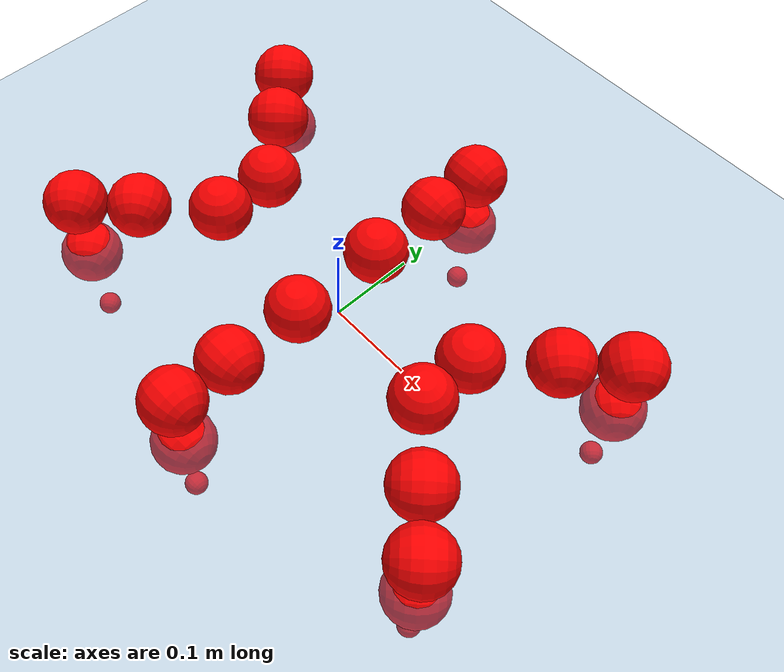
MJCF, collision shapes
<mujoco model="Golem">
  <compiler angle="radian" assetdir="assets" balanceinertia="true" inertiafromgeom="false"/>

  <option timestep="0.005" density="1.2" viscosity="2e-05"/>

  <size nkey="1"/>

  <visual>
    <quality shadowsize="8192"/>
    <map shadowclip="0.5"/>
  </visual>

  <default>
    <default class="/">
      <joint armature="0.01" damping="0.01" frictionloss="0.01"/>
      <geom contype="0" conaffinity="0" group="1" solref="-1000 -80"/>
      <site size="0.01 0.005 0.005" group="5"/>
      <general forcelimited="true" biastype="affine" gainprm="25" biasprm="0 -25 -0.5"/>
      <default class="visual">
        <geom type="mesh" group="2"/>
      </default>
      <default class="collision">
        <geom group="3"/>
      </default>
      <default class="foot">
        <geom size="0.01 0 0" condim="6" group="4" priority="1" solimp="0.015 1 0.01"/>
      </default>
      <default class="reward_collision_sphere">
        <geom group="5" rgba="1 0 0 1"/>
      </default>
    </default>
  </default>

  <asset>
    <texture type="skybox" colorspace="auto" name="//unnamed_texture_0" builtin="gradient" rgb1="0.95 0.95 0.95" rgb2="0.95 0.95 0.95" width="100" height="600"/>
    <texture type="2d" colorspace="auto" name="texplane" builtin="checker" rgb1="0.345 0.575 0.748" rgb2="0.345 0.575 0.748" markrgb="1 1 1" width="512" height="512"/>
    <material name="MatPlane" class="/" texture="texplane" texuniform="true" texrepeat="2 2" specular="0.9"/>
    <mesh name="body" class="/" file="body.stl" scale="0.001 0.001 0.001"/>
    <mesh name="coxa" class="/" file="coxa.stl" scale="0.001 0.001 0.001"/>
    <mesh name="femur" class="/" file="femur.stl" scale="0.001 0.001 0.001"/>
    <mesh name="tibia" class="/" file="tibia.stl" scale="0.001 0.001 0.001"/>
    <mesh name="tarsus" class="/" file="tarsus.stl" scale="0.001 0.001 0.001"/>
  </asset>

  <worldbody>
    <geom name="floor" class="/" size="100 100 0.125" type="plane" group="0" material="MatPlane"/>
    <light name="toplight_shadow" class="/" pos="0 0 5" dir="0.0990148 0.0990148 -0.990148" type="directional" ambient="0.04 0.04 0.04" diffuse="0.55 0.55 0.55" specular="0.12 0.12 0.12"/>
    <light name="toplight_fill" class="/" pos="0 0 5" dir="0.0990148 0.0990148 -0.990148" type="directional" castshadow="false" ambient="0.04 0.04 0.04" diffuse="0.3 0.3 0.3" specular="0.08 0.08 0.08"/>
    <body name="trunk" pos="0.000668765 0.000159993 -0.000304506" quat="1 -0.000179591 -6.34418e-05 -0.00010378">
      <inertial pos="-0.000344974 0.000593005 -0.00335641" quat="0.999991 0.00207575 0.00313169 0.00218742" mass="2.63374" diaginertia="0.0108258 0.00117763 0.0100077"/>
      <joint name="//unnamed_joint_0" type="free"/>
      <geom name="//unnamed_geom_1" class="/" pos="0 0 0.0639381" quat="1 0 0 0" type="mesh" rgba="0.9 0.9 0.9 1" mesh="body"/>
      <site name="imu" class="/" pos="0.131269 -0.00127897 0.103878" size="0.00888491"/>
      <camera name="track" class="/" pos="0 -1.30208 0" quat="0.707107 0.707107 0 0" mode="trackcom"/>
      <camera name="ego_camera" class="/" pos="0.132002 0 0.0999033" quat="-0.5 -0.5 0.5 0.5"/>
      <body name="coxa_RR" pos="-0.179298 -0.0547995 0.0640997" quat="0.382725 2.31788e-05 7.71818e-05 -0.923862">
        <inertial pos="-0.00105864 -0.000535406 -0.000224854" quat="0.999989 -0.00134923 0.00428743 -0.00109303" mass="0.141733" diaginertia="0.0108228 0.00116866 0.00996279"/>
        <joint name="coxa_joint_RR" class="/" pos="0 0 0" axis="0.000491709 0.00184463 -0.999998" range="-3.13567 3.12041" armature="0.00922668" damping="0.00533454" frictionloss="0.00894425"/>
        <geom name="//unnamed_geom_2" class="/" type="mesh" rgba="0.2 0.2 0.2 1" mesh="coxa"/>
        <geom name="//unnamed_geom_3" class="reward_collision_sphere" size="0.0355397" pos="-0.0304621 0 0"/>
        <body name="femur_RR" pos="0.0597831 0.000487872 -3.33034e-05" quat="0.499901 -0.499856 0.500235 0.500009">
          <inertial pos="0.000171888 -0.000520101 -0.000177843" quat="1 -0.000169326 -8.9382e-05 0.0002694" mass="0.139066" diaginertia="0.0107176 0.00115982 0.00991192"/>
          <joint name="femur_joint_RR" class="/" pos="0 0 0" axis="-0.00108227 -0.00181378 -0.999998" range="-3.15738 3.15621" armature="0.00886744" damping="0" frictionloss="0.00864762"/>
          <geom name="//unnamed_geom_4" class="/" type="mesh" rgba="0.9 0.9 0.9 1" mesh="femur"/>
          <geom name="//unnamed_geom_5" class="reward_collision_sphere" size="0.0355397"/>
          <body name="tibia_RR" pos="-0.000112705 -0.0707666 -0.000473797" quat="0.0001817 1 -5.79795e-05 0.00027774">
            <inertial pos="0.000738681 0.000174527 -0.00034855" quat="0.999996 0.00234956 0.00169422 -0.000237902" mass="0.142214" diaginertia="0.010754 0.00117552 0.00990871"/>
            <joint name="tibia_joint_RR" class="/" pos="0 0 0" axis="-0.000142528 0.000780275 1" range="-3.1307 3.1377" armature="0.00893161" damping="0.001521" frictionloss="0.00891123"/>
            <geom name="//unnamed_geom_6" class="/" type="mesh" rgba="0.2 0.2 0.2 1" mesh="tibia"/>
            <geom name="//unnamed_geom_7" class="reward_collision_sphere" size="0.0355397"/>
            <body name="tarsus_RR" pos="0.089113 0.000167928 -0.00101318" quat="1 -0.000321051 0.000353026 -8.21606e-06">
              <inertial pos="0.0623711 0.000721089 0.000238392" quat="0.500544 0.499798 0.500248 0.499409" mass="0.140697" diaginertia="0.0107672 0.00117773 0.00995012"/>
              <joint name="tarsus_joint_RR" class="/" pos="0 0 0" axis="0.00357854 -0.00432168 0.999984" range="-3.14072 3.13784" armature="0.00898581" damping="0.0430499" frictionloss="0.00908077"/>
              <geom name="//unnamed_geom_8" class="/" type="mesh" rgba="0.9 0.9 0.9 1" mesh="tarsus"/>
              <geom name="foot_1" class="foot" size="0.00856765" pos="0.113725 0 0" quat="0 -0.707107 0 0.707107"/>
              <geom name="//unnamed_geom_10" class="reward_collision_sphere" size="0.0355397"/>
              <geom name="//unnamed_geom_11" class="reward_collision_sphere" size="0.0133274" pos="0.109156 0 0"/>
              <site name="foot_1" class="foot" pos="0.113725 0 0" quat="0 -0.707107 0 0.707107" size="0.00888491"/>
            </body>
          </body>
        </body>
      </body>
      <body name="coxa_RM" pos="-0.000435207 -0.086679 0.0639171" quat="0.707126 -4.05586e-05 1.63041e-05 -0.707087">
        <inertial pos="0.000195809 -5.54918e-05 -0.000205324" quat="1 -0.000138833 0.000163325 -1.42e-05" mass="0.140424" diaginertia="0.0109231 0.00116157 0.00996615"/>
        <joint name="coxa_joint_RM" class="/" pos="0 0 0" axis="0.000181864 -8.57437e-05 -1" range="-3.1486 3.13971" armature="0.00858619" damping="0.00901659" frictionloss="0.00883234"/>
        <geom name="//unnamed_geom_12" class="/" type="mesh" rgba="0.2 0.2 0.2 1" mesh="coxa"/>
        <geom name="//unnamed_geom_13" class="reward_collision_sphere" size="0.0355397" pos="-0.0304621 0 0"/>
        <body name="femur_RM" pos="0.059697 0.000122378 -0.00010736" quat="0.500013 -0.499991 0.500342 0.499654">
          <inertial pos="7.15578e-05 0.000681587 -0.00028407" quat="0.999994 0.000643742 -0.00132037 -0.00297369" mass="0.137455" diaginertia="0.0107661 0.0011524 0.00978613"/>
          <joint name="femur_joint_RM" class="/" pos="0 0 0" axis="0.000143593 0.000100742 -1" range="-3.15524 3.13395" armature="0.0088088" damping="0.00961338" frictionloss="0.00886621"/>
          <geom name="//unnamed_geom_14" class="/" type="mesh" rgba="0.9 0.9 0.9 1" mesh="femur"/>
          <geom name="//unnamed_geom_15" class="reward_collision_sphere" size="0.0355397"/>
          <body name="tibia_RM" pos="0.000225002 -0.0692462 -0.000299902" quat="0.000157249 1 -0.00011833 0.000321603">
            <inertial pos="0.000729739 0.000551049 -0.00037429" quat="0.999996 0.00192908 -6.21965e-05 0.00204822" mass="0.140935" diaginertia="0.0108211 0.0011688 0.00985447"/>
            <joint name="tibia_joint_RM" class="/" pos="0 0 0" axis="0.00225973 -0.00278017 0.999994" range="-3.13758 3.1376" armature="0.00873738" damping="0.00626249" frictionloss="0.00875624"/>
            <geom name="//unnamed_geom_16" class="/" type="mesh" rgba="0.2 0.2 0.2 1" mesh="tibia"/>
            <geom name="//unnamed_geom_17" class="reward_collision_sphere" size="0.0355397"/>
            <body name="tarsus_RM" pos="0.0897692 -0.000130728 0.00118136" quat="1 -6.60797e-06 3.09578e-05 1.56424e-05">
              <inertial pos="0.060873 -0.000336375 0.000342863" quat="0.499866 0.499946 0.499443 0.500744" mass="0.141105" diaginertia="0.0107102 0.00117676 0.00980613"/>
              <joint name="tarsus_joint_RM" class="/" pos="0 0 0" axis="0.00038374 0.000619179 1" range="-3.12452 3.15503" armature="0.00926693" damping="0.00456287" frictionloss="0.00851886"/>
              <geom name="//unnamed_geom_18" class="/" type="mesh" rgba="0.9 0.9 0.9 1" mesh="tarsus"/>
              <geom name="foot_2" class="foot" size="0.00895232" pos="0.113725 0 0" quat="0 -0.707107 0 0.707107"/>
              <geom name="//unnamed_geom_20" class="reward_collision_sphere" size="0.0355397"/>
              <geom name="//unnamed_geom_21" class="reward_collision_sphere" size="0.0133274" pos="0.109156 0 0"/>
              <site name="foot_2" class="foot" pos="0.113725 0 0" quat="0 -0.707107 0 0.707107" size="0.00888491"/>
            </body>
          </body>
        </body>
      </body>
      <body name="coxa_RF" pos="0.180799 -0.0548521 0.0633778" quat="0.923867 -2.6454e-05 5.24189e-05 -0.382713">
        <inertial pos="0.000495006 0.000237206 0.000230867" quat="1 0.000270413 0.000554196 -0.000462962" mass="0.140778" diaginertia="0.0107175 0.00118009 0.00994558"/>
        <joint name="coxa_joint_RF" class="/" pos="0 0 0" axis="0.000445139 -0.000561079 -1" range="-3.1546 3.13118" armature="0.00905798" damping="0.00131421" frictionloss="0.00897871"/>
        <geom name="//unnamed_geom_22" class="/" type="mesh" rgba="0.2 0.2 0.2 1" mesh="coxa"/>
        <geom name="//unnamed_geom_23" class="reward_collision_sphere" size="0.0355397" pos="-0.0304621 0 0"/>
        <body name="femur_RF" pos="0.0594948 0.00024924 -0.000532445" quat="0.500008 -0.499999 0.49994 0.500054">
          <inertial pos="0.000246079 0.000647868 0.000716881" quat="1 -1.60476e-06 0.000789589 0.000484105" mass="0.137798" diaginertia="0.0107151 0.00116067 0.00983938"/>
          <joint name="femur_joint_RF" class="/" pos="0 0 0" axis="0.000570904 0.00417933 -0.999991" range="-3.13744 3.15578" armature="0.00926405" damping="0.00946705" frictionloss="0.00863395"/>
          <geom name="//unnamed_geom_24" class="/" type="mesh" rgba="0.9 0.9 0.9 1" mesh="femur"/>
          <geom name="//unnamed_geom_25" class="reward_collision_sphere" size="0.0355397"/>
          <body name="tibia_RF" pos="0.00081509 -0.0712534 0.000363455" quat="0.000438718 1 0.000101141 -0.000188898">
            <inertial pos="0.00040609 0.000434535 -0.000279792" quat="0.999997 -0.000244198 0.00121469 0.00203041" mass="0.140265" diaginertia="0.010917 0.00117831 0.0101261"/>
            <joint name="tibia_joint_RF" class="/" pos="0 0 0" axis="5.72249e-05 -0.000175326 1" range="-3.13654 3.1437" armature="0.00893444" damping="0.0122011" frictionloss="0.00879201"/>
            <geom name="//unnamed_geom_26" class="/" type="mesh" rgba="0.2 0.2 0.2 1" mesh="tibia"/>
            <geom name="//unnamed_geom_27" class="reward_collision_sphere" size="0.0355397"/>
            <body name="tarsus_RF" pos="0.0885553 6.94242e-05 -0.000249038" quat="1 0.000126112 0.000164703 -0.000225436">
              <inertial pos="0.0598799 0.000211809 -4.73369e-05" quat="0.497013 0.502331 0.501575 0.499063" mass="0.141917" diaginertia="0.0109297 0.00118674 0.0100603"/>
              <joint name="tarsus_joint_RF" class="/" pos="0 0 0" axis="-0.00527346 -0.00309683 0.999981" range="-3.13595 3.14417" armature="0.00890995" damping="0" frictionloss="0.00849599"/>
              <geom name="//unnamed_geom_28" class="/" type="mesh" rgba="0.9 0.9 0.9 1" mesh="tarsus"/>
              <geom name="foot_3" class="foot" size="0.00877778" pos="0.113725 0 0" quat="0 -0.707107 0 0.707107"/>
              <geom name="//unnamed_geom_30" class="reward_collision_sphere" size="0.0355397"/>
              <geom name="//unnamed_geom_31" class="reward_collision_sphere" size="0.0133274" pos="0.109156 0 0"/>
              <site name="foot_3" class="foot" pos="0.113725 0 0" quat="0 -0.707107 0 0.707107" size="0.00888491"/>
            </body>
          </body>
        </body>
      </body>
      <body name="coxa_LR" pos="-0.179098 0.0575754 0.0647948" quat="0.382681 6.52815e-06 -2.89992e-06 0.923881">
        <inertial pos="0.000490315 -0.000176728 0.00076244" quat="1 1.4611e-05 1.28551e-05 5.84724e-06" mass="0.141406" diaginertia="0.0108045 0.001173 0.00984578"/>
        <joint name="coxa_joint_LR" class="/" pos="0 0 0" axis="-0.00156953 -0.00197054 -0.999997" range="-3.14519 3.1373" armature="0.00927588" damping="0.00686815" frictionloss="0.00895587"/>
        <geom name="//unnamed_geom_32" class="/" type="mesh" rgba="0.2 0.2 0.2 1" mesh="coxa"/>
        <geom name="//unnamed_geom_33" class="reward_collision_sphere" size="0.0355397" pos="-0.0304621 0 0"/>
        <body name="femur_LR" pos="0.0618473 -0.00155093 -0.00147098" quat="0.49981 -0.499846 0.500203 0.500141">
          <inertial pos="-3.24959e-05 -0.000477712 -0.000946678" quat="0.999996 -0.00207418 0.00153536 -0.000721857" mass="0.139708" diaginertia="0.0106791 0.0011818 0.00983874"/>
          <joint name="femur_joint_LR" class="/" pos="0 0 0" axis="0.000517013 -0.000168749 1" range="-3.14226 3.13965" armature="0.00891036" damping="0" frictionloss="0.00885929"/>
          <geom name="//unnamed_geom_34" class="/" type="mesh" rgba="0.9 0.9 0.9 1" mesh="femur"/>
          <geom name="//unnamed_geom_35" class="reward_collision_sphere" size="0.0355397"/>
          <body name="tibia_LR" pos="0.000361003 -0.0721081 -0.000768556" quat="-3.35685e-05 1 -0.000155957 5.27688e-05">
            <inertial pos="-0.00110167 0.000245566 -0.000111193" quat="0.999998 0.000676469 -0.00166849 0.000470452" mass="0.14034" diaginertia="0.0107659 0.00116255 0.0100082"/>
            <joint name="tibia_joint_LR" class="/" pos="0 0 0" axis="0.000250389 0.000995294 -0.999999" range="-3.13391 3.12922" armature="0.00922733" damping="0.00358667" frictionloss="0.009027"/>
            <geom name="//unnamed_geom_36" class="/" type="mesh" rgba="0.2 0.2 0.2 1" mesh="tibia"/>
            <geom name="//unnamed_geom_37" class="reward_collision_sphere" size="0.0355397"/>
            <body name="tarsus_LR" pos="0.0898002 0.00130217 0.00130071" quat="1 8.59638e-05 -2.2994e-05 -2.97734e-05">
              <inertial pos="0.0616954 0.000641898 0.000239615" quat="0.498829 0.500134 0.500081 0.500954" mass="0.141663" diaginertia="0.0109206 0.00115857 0.00995023"/>
              <joint name="tarsus_joint_LR" class="/" pos="0 0 0" axis="0.00368026 0.00138679 -0.999992" stiffness="0.00243345" range="-3.14775 3.15078" armature="0.00871396" damping="0.0278502" frictionloss="0.00864269"/>
              <geom name="//unnamed_geom_38" class="/" type="mesh" rgba="0.9 0.9 0.9 1" mesh="tarsus"/>
              <geom name="foot_4" class="foot" size="0.00879895" pos="0.113725 0 0" quat="0.707107 0 -0.707107 0"/>
              <geom name="//unnamed_geom_40" class="reward_collision_sphere" size="0.0355397"/>
              <geom name="//unnamed_geom_41" class="reward_collision_sphere" size="0.0133274" pos="0.109156 0 0"/>
              <site name="foot_4" class="foot" pos="0.113725 0 0" quat="0.707107 0 -0.707107 0" size="0.00888491"/>
            </body>
          </body>
        </body>
      </body>
      <body name="coxa_LM" pos="-0.00135528 0.0849916 0.0637093" quat="0.707095 4.98922e-06 4.03962e-06 0.707119">
        <inertial pos="0.000559615 0.000601958 0.000202565" quat="1 0.000102834 -7.23444e-05 -3.34835e-05" mass="0.1404" diaginertia="0.010808 0.00116952 0.00995419"/>
        <joint name="coxa_joint_LM" class="/" pos="0 0 0" axis="-0.00487153 -0.000362484 -0.999988" range="-3.1563 3.15646" armature="0.00883879" damping="0.00681047" frictionloss="0.00849271"/>
        <geom name="//unnamed_geom_42" class="/" type="mesh" rgba="0.2 0.2 0.2 1" mesh="coxa"/>
        <geom name="//unnamed_geom_43" class="reward_collision_sphere" size="0.0355397" pos="-0.0304621 0 0"/>
        <body name="femur_LM" pos="0.0565459 0.000645935 -0.000767123" quat="0.500183 -0.499682 0.499856 0.500279">
          <inertial pos="0.000653524 -0.000912815 -0.000417203" quat="0.999997 0.00066933 0.00188674 0.00156027" mass="0.14074" diaginertia="0.0107572 0.00118487 0.0100265"/>
          <joint name="femur_joint_LM" class="/" pos="0 0 0" axis="-0.00213078 -0.00471272 0.999987" range="-3.15042 3.14017" armature="0.00859729" damping="0.00518197" frictionloss="0.00878584"/>
          <geom name="//unnamed_geom_44" class="/" type="mesh" rgba="0.9 0.9 0.9 1" mesh="femur"/>
          <geom name="//unnamed_geom_45" class="reward_collision_sphere" size="0.0355397"/>
          <body name="tibia_LM" pos="0.00031758 -0.0686802 0.00169161" quat="1.13722e-05 1 0.000163249 -0.000118106">
            <inertial pos="-0.000258194 -0.000928252 -0.000928567" quat="0.999999 -4.78289e-05 0.00107451 -0.000240853" mass="0.14095" diaginertia="0.0108876 0.00118101 0.0101464"/>
            <joint name="tibia_joint_LM" class="/" pos="0 0 0" axis="0.00169718 0.001197 -0.999998" range="-3.13499 3.12658" armature="0.00895364" damping="0.00310144" frictionloss="0.00927309"/>
            <geom name="//unnamed_geom_46" class="/" type="mesh" rgba="0.2 0.2 0.2 1" mesh="tibia"/>
            <geom name="//unnamed_geom_47" class="reward_collision_sphere" size="0.0355397"/>
            <body name="tarsus_LM" pos="0.0879449 -0.000122323 -0.00134392" quat="1 -6.74174e-05 9.70219e-06 3.49142e-06">
              <inertial pos="0.0610061 0.000482951 -0.000189185" quat="0.497101 0.499062 0.500864 0.502953" mass="0.141565" diaginertia="0.0106912 0.00117081 0.00996457"/>
              <joint name="tarsus_joint_LM" class="/" pos="0 0 0" axis="0.00698142 -0.00180694 -0.999974" range="-3.13543 3.15419" armature="0.00886292" damping="0.0026785" frictionloss="0.00889815"/>
              <geom name="//unnamed_geom_48" class="/" type="mesh" rgba="0.9 0.9 0.9 1" mesh="tarsus"/>
              <geom name="foot_5" class="foot" size="0.00876817" pos="0.113725 0 0" quat="0.707107 0 -0.707107 0"/>
              <geom name="//unnamed_geom_50" class="reward_collision_sphere" size="0.0355397"/>
              <geom name="//unnamed_geom_51" class="reward_collision_sphere" size="0.0133274" pos="0.109156 0 0"/>
              <site name="foot_5" class="foot" pos="0.113725 0 0" quat="0.707107 0 -0.707107 0" size="0.00888491"/>
            </body>
          </body>
        </body>
      </body>
      <body name="coxa_LF" pos="0.180731 0.0542194 0.0641393" quat="0.923879 -7.70155e-06 -2.38722e-06 0.382685">
        <inertial pos="-4.88747e-07 0.000338616 -0.000182104" quat="1 -0.000206935 -9.76598e-05 -6.88277e-05" mass="0.139631" diaginertia="0.0108178 0.00116367 0.00991544"/>
        <joint name="coxa_joint_LF" class="/" pos="0 0 0" axis="-0.00354732 0.000640352 -0.999994" range="-3.14105 3.15288" armature="0.00895773" damping="0.00341657" frictionloss="0.00890405"/>
        <geom name="//unnamed_geom_52" class="/" type="mesh" rgba="0.2 0.2 0.2 1" mesh="coxa"/>
        <geom name="//unnamed_geom_53" class="reward_collision_sphere" size="0.0355397" pos="-0.0304621 0 0"/>
        <body name="femur_LF" pos="0.0606369 0.00124891 -0.00134515" quat="0.500023 -0.500058 0.499933 0.499986">
          <inertial pos="0.000154057 -0.000596341 -0.000246425" quat="1 0.000118428 -0.000781673 0.000145701" mass="0.141086" diaginertia="0.010864 0.0011926 0.0100641"/>
          <joint name="femur_joint_LF" class="/" pos="0 0 0" axis="-0.00184261 -0.000735589 0.999998" range="-3.13832 3.13677" armature="0.00906208" damping="0.00124177" frictionloss="0.00908625"/>
          <geom name="//unnamed_geom_54" class="/" type="mesh" rgba="0.9 0.9 0.9 1" mesh="femur"/>
          <geom name="//unnamed_geom_55" class="reward_collision_sphere" size="0.0355397"/>
          <body name="tibia_LF" pos="5.21334e-05 -0.0708241 -0.000865416" quat="0.000132919 1 0.000126148 -0.000231362">
            <inertial pos="-4.17736e-05 -0.000872037 0.000495846" quat="1 0.000687539 -0.000558354 0.000144018" mass="0.141073" diaginertia="0.0108287 0.00116434 0.0098794"/>
            <joint name="tibia_joint_LF" class="/" pos="0 0 0" axis="-0.0018077 0.000698308 -0.999998" range="-3.13925 3.15628" armature="0.00849139" damping="3.69041e-05" frictionloss="0.00884487"/>
            <geom name="//unnamed_geom_56" class="/" type="mesh" rgba="0.2 0.2 0.2 1" mesh="tibia"/>
            <geom name="//unnamed_geom_57" class="reward_collision_sphere" size="0.0355397"/>
            <body name="tarsus_LF" pos="0.0884375 -0.000302247 -0.000523402" quat="1 0.000213021 0.000312851 -0.000276438">
              <inertial pos="0.0606981 0.000346569 -0.000271847" quat="0.499807 0.501226 0.49981 0.499155" mass="0.140649" diaginertia="0.0108454 0.00117762 0.00995527"/>
              <joint name="tarsus_joint_LF" class="/" pos="0 0 0" axis="-0.000480121 0.000479329 -1" range="-3.14227 3.14171" armature="0.00885929" damping="0.0105554" frictionloss="0.00889834"/>
              <geom name="//unnamed_geom_58" class="/" type="mesh" rgba="0.9 0.9 0.9 1" mesh="tarsus"/>
              <geom name="foot_6" class="foot" size="0.00897369" pos="0.113725 0 0" quat="0.707107 0 -0.707107 0"/>
              <geom name="//unnamed_geom_60" class="reward_collision_sphere" size="0.0355397"/>
              <geom name="//unnamed_geom_61" class="reward_collision_sphere" size="0.0133274" pos="0.109156 0 0"/>
              <site name="foot_6" class="foot" pos="0.113725 0 0" quat="0.707107 0 -0.707107 0" size="0.00888491"/>
            </body>
          </body>
        </body>
      </body>
    </body>
  </worldbody>

  <contact>
    <pair class="/" geom1="floor" geom2="foot_1" name="//unnamed_contact_0"/>
    <pair class="/" geom1="floor" geom2="foot_2" name="//unnamed_contact_1"/>
    <pair class="/" geom1="floor" geom2="foot_3" name="//unnamed_contact_2"/>
    <pair class="/" geom1="floor" geom2="foot_4" name="//unnamed_contact_3"/>
    <pair class="/" geom1="floor" geom2="foot_5" name="//unnamed_contact_4"/>
    <pair class="/" geom1="floor" geom2="foot_6" name="//unnamed_contact_5"/>
  </contact>

  <actuator>
    <general name="coxa_joint_RR" class="/" joint="coxa_joint_RR" forcerange="-6.47588 6.47588" gainprm="21.2078" biasprm="0 -21.2078 -0.467987"/>
    <general name="femur_joint_RR" class="/" joint="femur_joint_RR" forcerange="-6.48831 6.48831" gainprm="21.2078" biasprm="0 -21.2078 -0.467987"/>
    <general name="tibia_joint_RR" class="/" joint="tibia_joint_RR" forcerange="-6.42214 6.42214" gainprm="21.2078" biasprm="0 -21.2078 -0.467987"/>
    <general name="tarsus_joint_RR" class="/" joint="tarsus_joint_RR" forcerange="-6.43299 6.43299" gainprm="21.2078" biasprm="0 -21.2078 -0.467987"/>
    <general name="coxa_joint_RM" class="/" joint="coxa_joint_RM" forcerange="-6.47732 6.47732" gainprm="21.2078" biasprm="0 -21.2078 -0.467987"/>
    <general name="femur_joint_RM" class="/" joint="femur_joint_RM" forcerange="-6.60843 6.60843" gainprm="21.2078" biasprm="0 -21.2078 -0.467987"/>
    <general name="tibia_joint_RM" class="/" joint="tibia_joint_RM" forcerange="-6.49005 6.49005" gainprm="21.2078" biasprm="0 -21.2078 -0.467987"/>
    <general name="tarsus_joint_RM" class="/" joint="tarsus_joint_RM" forcerange="-6.42569 6.42569" gainprm="21.2078" biasprm="0 -21.2078 -0.467987"/>
    <general name="coxa_joint_RF" class="/" joint="coxa_joint_RF" forcerange="-6.5648 6.5648" gainprm="21.2078" biasprm="0 -21.2078 -0.467987"/>
    <general name="femur_joint_RF" class="/" joint="femur_joint_RF" forcerange="-6.64039 6.64039" gainprm="21.2078" biasprm="0 -21.2078 -0.467987"/>
    <general name="tibia_joint_RF" class="/" joint="tibia_joint_RF" forcerange="-6.31294 6.31294" gainprm="21.2078" biasprm="0 -21.2078 -0.467987"/>
    <general name="tarsus_joint_RF" class="/" joint="tarsus_joint_RF" forcerange="-6.33249 6.33249" gainprm="21.2078" biasprm="0 -21.2078 -0.467987"/>
    <general name="coxa_joint_LR" class="/" joint="coxa_joint_LR" forcerange="-6.46419 6.46419" gainprm="21.2078" biasprm="0 -21.2078 -0.467987"/>
    <general name="femur_joint_LR" class="/" joint="femur_joint_LR" forcerange="-6.6959 6.6959" gainprm="21.2078" biasprm="0 -21.2078 -0.467987"/>
    <general name="tibia_joint_LR" class="/" joint="tibia_joint_LR" forcerange="-6.39962 6.39962" gainprm="21.2078" biasprm="0 -21.2078 -0.467987"/>
    <general name="tarsus_joint_LR" class="/" joint="tarsus_joint_LR" forcerange="-6.63961 6.63961" gainprm="21.2078" biasprm="0 -21.2078 -0.467987"/>
    <general name="coxa_joint_LM" class="/" joint="coxa_joint_LM" forcerange="-6.28793 6.28793" gainprm="21.2078" biasprm="0 -21.2078 -0.467987"/>
    <general name="femur_joint_LM" class="/" joint="femur_joint_LM" forcerange="-6.50712 6.50712" gainprm="21.2078" biasprm="0 -21.2078 -0.467987"/>
    <general name="tibia_joint_LM" class="/" joint="tibia_joint_LM" forcerange="-6.46791 6.46791" gainprm="21.2078" biasprm="0 -21.2078 -0.467987"/>
    <general name="tarsus_joint_LM" class="/" joint="tarsus_joint_LM" forcerange="-6.60936 6.60936" gainprm="21.2078" biasprm="0 -21.2078 -0.467987"/>
    <general name="coxa_joint_LF" class="/" joint="coxa_joint_LF" forcerange="-6.50278 6.50278" gainprm="21.2078" biasprm="0 -21.2078 -0.467987"/>
    <general name="femur_joint_LF" class="/" joint="femur_joint_LF" forcerange="-6.47868 6.47868" gainprm="21.2078" biasprm="0 -21.2078 -0.467987"/>
    <general name="tibia_joint_LF" class="/" joint="tibia_joint_LF" forcerange="-6.42934 6.42934" gainprm="21.2078" biasprm="0 -21.2078 -0.467987"/>
    <general name="tarsus_joint_LF" class="/" joint="tarsus_joint_LF" forcerange="-6.50042 6.50042" gainprm="21.2078" biasprm="0 -21.2078 -0.467987"/>
  </actuator>

  <sensor>
    <gyro site="imu" name="imu_angular_velocity"/>
    <velocimeter site="imu" name="imu_linear_velocity"/>
    <framelinvel objtype="site" objname="foot_1" name="foot_1_global_linear_velocity"/>
    <framelinvel objtype="site" objname="foot_2" name="foot_2_global_linear_velocity"/>
    <framelinvel objtype="site" objname="foot_3" name="foot_3_global_linear_velocity"/>
    <framelinvel objtype="site" objname="foot_4" name="foot_4_global_linear_velocity"/>
    <framelinvel objtype="site" objname="foot_5" name="foot_5_global_linear_velocity"/>
    <framelinvel objtype="site" objname="foot_6" name="foot_6_global_linear_velocity"/>
  </sensor>

  <keyframe>
    <key name="home" qpos="0 0 0.1457 1 0 0 0 0 0 0 0 0 0 0 0 0 0 0 0 0 0 0 0 0 0 0 0 0 0 0 0"/>
  </keyframe>
</mujoco>
